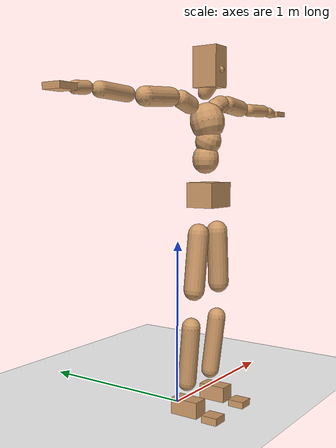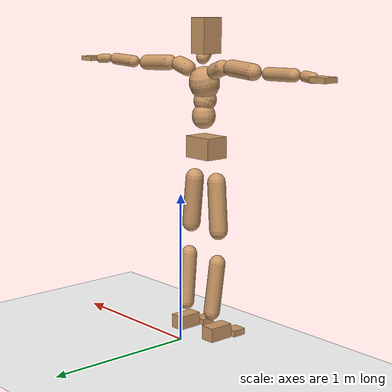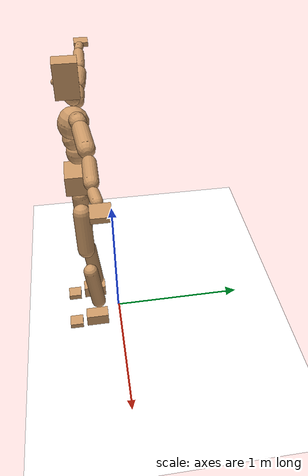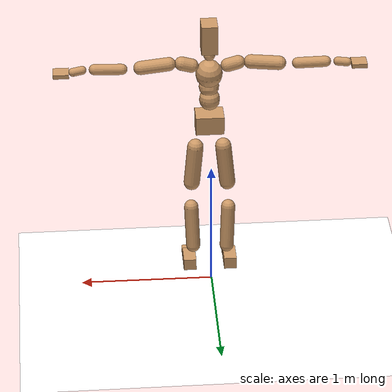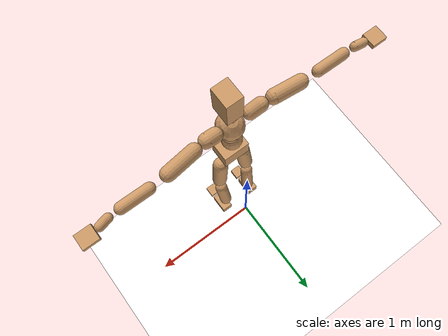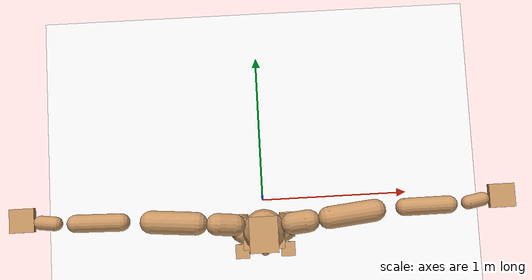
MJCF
<mujoco model="humanoid">
  <option integrator="implicitfast" />

  <visual>
    <global offwidth="1280" offheight="960" />
    <headlight active="1" ambient="0.34 0.34 0.34" diffuse="0.5 0.5 0.5" />
  </visual>

  <default>
    <joint damping="2" stiffness="2" armature="0.01" limited="true" solimplimit="0 .99 .01" />
    <geom condim="1" friction="0.7 0.005 0.0001" solimp=".99 .99 .003" solref="0.015 1" margin="0.001" rgba="0.8 0.6 .4 1" />
    <default class="smplcontact">
      <geom condim="3" friction="1. 0.005 0.0001" solref="0.015 1" solimp="0.98 0.98 0.001" priority="1" />
    </default>
    <default class="stiff_medium">
      <joint stiffness="10" />
    </default>
    <default class="stiff_medium_higher">
      <joint stiffness="50" />
    </default>
    <default class="stiff_high">
      <joint stiffness="100" />
    </default>
  </default>

  <asset>
    <texture type="skybox" builtin="gradient" rgb1="0.99 0.99 0.99" rgb2="0.608 0.828 0.892" width="100" />
    <texture builtin="flat" height="1278" mark="cross" markrgb="1 1 1" name="texgeom" random="0.01" rgb1="0.8 0.6 0.4" rgb2="0.8 0.6 0.4" type="cube" width="127" />
    <texture name="texplane" type="2d" builtin="checker" markrgb="1 1 1" rgb1="0.756 0.772 0.76" rgb2="0.6 0.6 0.6" width="100" height="100" />
    <material name="MatPlane" reflectance="0.5" texture="texplane" texrepeat="1 1" texuniform="true" />
    <material name="geom" texture="texgeom" texuniform="true" />
  </asset>

  <worldbody>
    <light name="tracking_light" pos="0 0 7" dir="0 0 -1" directional="true" cutoff="100" exponent="1" diffuse="1 1 1" specular="0.1 0.1 0.1" mode="trackcom" />
    <camera name="back" pos="0 3 2.4" xyaxes="-1 0 0 0 -1 2" mode="trackcom" />
    <camera name="side" pos="-3 0 2.4" xyaxes="0 -1 0 1 0 2" mode="trackcom" />
    <camera name="front_side" pos="-2.8 -2.8 0.8" xyaxes="0.5 -0.5 0 0.1 0.1 1" mode="trackcom" />
    <geom condim="3" name="floor" pos="0 0 0" rgba="1 1 1 1" size="100 100 .2" type="plane" material="MatPlane" />
    <body name="Pelvis" pos="-0.0018 -0.2233 1.30274" euler="90 0 0">
      <site name="Pelvis" size="0.01" />
      <freejoint name="Pelvis" />
      <geom type="box" pos="-0.0000 -0.0121 -0.0055" size="0.1069 0.0722 0.083" quat="1.0000 0.0000 0.0000 0.0000" density="3165.830099" name="Pelvis" />
      <body name="L_Hip" pos="0.0973 -0.12796 -0.00952">
        <joint name="L_Hip_x" type="hinge" pos="0 0 0" axis="1 0 0" stiffness="17.7472259" range="-160.0 22.92" class="stiff_medium" damping="30.81669086126342" armature="0.023782582284246248"/>
        <joint name="L_Hip_y" type="hinge" pos="0 0 0" axis="0 1 0" stiffness="17.633932700000003" range="-70.0 70.0" class="stiff_medium" damping="17.289750382357244" armature="0.016952285878023252"/>
        <joint name="L_Hip_z" type="hinge" pos="0 0 0" axis="0 0 1" stiffness="17.6422086" range="-28.65 90.0" class="stiff_medium" damping="20.487832382248058" armature="0.023792444882614765"/>
        <geom type="capsule" density="2040.816327" fromto="0.00966 -0.105 -0.00126 0.03836 -0.42028 -0.00504" size="0.0615" name="L_Hip" />
        <body name="L_Knee" pos="0.04802 -0.52528 -0.0063">
          <joint name="L_Knee_x" type="hinge" pos="0 0 0" axis="1 0 0" range="-5.16 171.89" damping="15.634387661988677" armature="0.022299756497886812" stiffness="3.42540284"/>
          <joint name="L_Knee_y" type="hinge" pos="0 0 0" axis="0 1 0" range="-4.58 6.88" damping="13.338012720872122" armature="0.015877769649549945" stiffness="3.50140848"/>
          <joint name="L_Knee_z" type="hinge" pos="0 0 0" axis="0 0 1" range="-6.88 4.58" damping="15.561040251102966" armature="0.022343640973993974" stiffness="3.3866735000000006"/>
          <geom type="capsule" density="1234.567901" fromto="-0.00378 -0.11144 -0.01218 -0.01526 -0.44576 -0.049" size="0.0541" name="L_Knee" />
          <body name="L_Ankle" pos="-0.01904 -0.5572 -0.06118">
            <joint name="L_Ankle_x" type="hinge" pos="0 0 0" axis="1 0 0" range="-45.84 45.84" class="stiff_medium" damping="9.067720254254931" armature="0.01631419654948911" stiffness="14.000000000000004"/>
            <joint name="L_Ankle_y" type="hinge" pos="0 0 0" axis="0 1 0" range="-74.48 22.92" class="stiff_medium" damping="4.501101099810406" armature="0.016079294532313052" stiffness="14.000000000000004"/>
            <joint name="L_Ankle_z" type="hinge" pos="0 0 0" axis="0 0 1" range="-4.58 4.58" class="stiff_medium" damping="8.560904771043779" armature="0.014541486210095258" stiffness="14.000000000000004"/>
            <geom type="box" pos="0.03262 -0.03346 0.03388" size="0.0483 0.0464 0.085" quat="1.0000 0.0000 0.0000 0.0000" density="449.071558" name="L_Ankle" class="smplcontact" />
            <body name="L_Toe" pos="0.03696 -0.07812 0.16702">
              <joint name="L_Toe_x" type="hinge" pos="0 0 0" axis="1 0 0" range="-91.67 22.92" armature="0.013649803949706305" damping="2.7647586172820824" stiffness="2.8000000000000007"/>
              <joint name="L_Toe_y" type="hinge" pos="0 0 0" axis="0 1 0" range="-4.58 4.58" armature="0.012571581533334169" damping="2.653315974147658" stiffness="2.8000000000000007"/>
              <joint name="L_Toe_z" type="hinge" pos="0 0 0" axis="0 0 1" range="-4.58 4.58" armature="0.010391473842481389" damping="2.4123070600132106" stiffness="2.8000000000000007"/>
              <geom type="box" pos="-0.0042 0.0077 0.03472" size="0.0478 0.02 0.0496" quat="1.0000 0.0000 0.0000 0.0000" density="423.206892" name="L_Toe" class="smplcontact" />
            </body>
          </body>
        </body>
      </body>
      <body name="R_Hip" pos="-0.09478 -0.1267 -0.00602">
        <joint name="R_Hip_x" type="hinge" pos="0 0 0" axis="1 0 0" stiffness="17.7472259" range="-160.0 22.92" class="stiff_medium" damping="30.81669086126342" armature="0.023782582284246248"/>
        <joint name="R_Hip_y" type="hinge" pos="0 0 0" axis="0 1 0" stiffness="17.633932700000003" range="-70.0 70.0" class="stiff_medium" damping="17.289750382357244" armature="0.016952285878023252"/>
        <joint name="R_Hip_z" type="hinge" pos="0 0 0" axis="0 0 1" stiffness="17.6422086" range="-90.0 28.65" class="stiff_medium" damping="20.487832382248058" armature="0.023792444882614765"/>
        <geom type="capsule" density="2040.816327" fromto="-0.01078 -0.1071 -0.00252 -0.04284 -0.42854 -0.00994" size="0.0606" name="R_Hip" />
        <body name="R_Knee" pos="-0.05362 -0.53564 -0.01246">
          <joint name="R_Knee_x" type="hinge" pos="0 0 0" axis="1 0 0" range="-5.16 171.89" damping="15.634387661988677" armature="0.022299756497886812" stiffness="3.42540284"/>
          <joint name="R_Knee_y" type="hinge" pos="0 0 0" axis="0 1 0" range="-6.88 4.58" damping="13.338012720872122" armature="0.015877769649549945" stiffness="3.50140848"/>
          <joint name="R_Knee_z" type="hinge" pos="0 0 0" axis="0 0 1" range="-4.58 6.88" damping="15.561040251102966" armature="0.022343640973993974" stiffness="3.3866735000000006"/>
          <geom type="capsule" density="1234.567901" fromto="0.00448 -0.11158 -0.0119 0.01764 -0.44618 -0.04732" size="0.0541" name="R_Knee" />
          <body name="R_Ankle" pos="0.02212 -0.55776 -0.05922">
            <joint name="R_Ankle_x" type="hinge" pos="0 0 0" axis="1 0 0" range="-45.84 45.84" class="stiff_medium" damping="9.067720254254931" armature="0.01631419654948911" stiffness="14.000000000000004"/>
            <joint name="R_Ankle_y" type="hinge" pos="0 0 0" axis="0 1 0" range="-22.92 74.48" class="stiff_medium" damping="4.501101099810406" armature="0.016079294532313052" stiffness="14.000000000000004"/>
            <joint name="R_Ankle_z" type="hinge" pos="0 0 0" axis="0 0 1" range="-4.58 4.58" class="stiff_medium" damping="8.560904771043779" armature="0.014541486210095258" stiffness="14.000000000000004"/>
            <geom type="box" pos="-0.02968 -0.02436 0.03584" size="0.0483 0.0478 0.0865" quat="1.0000 0.0000 0.0000 0.0000" density="434.700981" name="R_Ankle" class="smplcontact" />
            <body name="R_Toe" pos="-0.03556 -0.06734 0.17262">
              <joint name="R_Toe_x" type="hinge" pos="0 0 0" axis="1 0 0" range="-91.67 22.92" armature="0.013649803949706305" damping="2.7647586172820824" stiffness="2.8000000000000007"/>
              <joint name="R_Toe_y" type="hinge" pos="0 0 0" axis="0 1 0" range="-4.58 4.58" armature="0.012571581533334169" damping="2.653315974147658" stiffness="2.8000000000000007"/>
              <joint name="R_Toe_z" type="hinge" pos="0 0 0" axis="0 0 1" range="-4.58 4.58" armature="0.010391473842481389" damping="2.4123070600132106" stiffness="2.8000000000000007"/>
              <geom type="box" pos="0.00588 0.0063 0.03178" size="0.0479 0.0216 0.0493" quat="1.0000 0.0000 0.0000 0.0000" density="407.384095" name="R_Toe" class="smplcontact" />
            </body>
          </body>
        </body>
      </body>
      <body name="Torso" pos="-0.00275 0.1199 -0.02937">
        <joint name="Torso_x" type="hinge" pos="0 0 0" axis="1 0 0" range="-25.78 57.3" class="stiff_medium" damping="19.180403402400707" armature="0.013576805350455617" stiffness="12.0430188"/>
        <joint name="Torso_y" type="hinge" pos="0 0 0" axis="0 1 0" range="-57.3 57.3" class="stiff_high" damping="31.976250733041294" armature="0.02135014531378717" stiffness="119.72759387755103"/>
        <joint name="Torso_z" type="hinge" pos="0 0 0" axis="0 0 1" range="-34.38 34.38" class="stiff_high" damping="27.52220533167257" armature="0.016259427694042636" stiffness="116.4665510638298"/>
        <geom type="capsule" density="2040.816327" fromto="0.00275 0.06688 0.00055 0.0033 0.08173 0.00066" size="0.0769" name="Torso" />
        <body name="Spine" pos="0.00605 0.14872 0.00121">
          <joint name="Spine_x" type="hinge" pos="0 0 0" axis="1 0 0" stiffness="12.183106200000001" range="-25.78 57.3" class="stiff_medium" damping="19.341452409705997" armature="0.013647013429024524"/>
          <joint name="Spine_y" type="hinge" pos="0 0 0" axis="0 1 0" stiffness="12.461571276595745" range="-57.3 57.3" class="stiff_high" damping="13.072377803165951" armature="0.021426754905605697"/>
          <joint name="Spine_z" type="hinge" pos="0 0 0" axis="0 0 1" stiffness="25.257026800000002" range="-34.38 34.38" class="stiff_high" damping="18.089865150196843" armature="0.01799516932145979"/>
          <geom type="capsule" density="2040.816327" fromto="0.00077 0.02618 0.01254 0.00088 0.03201 0.0154" size="0.0755" name="Spine" />
          <body name="Chest" pos="0.00165 0.05819 0.02794">
            <joint name="Chest_x" type="hinge" pos="0 0 0" axis="1 0 0" stiffness="12.662946041666665" range="-25.78 57.3" class="stiff_medium" damping="19.75792096959218" armature="0.013701408459546052"/>
            <joint name="Chest_y" type="hinge" pos="0 0 0" axis="0 1 0" stiffness="14.396006222222223" range="-57.3 57.3" class="stiff_high" damping="14.060475364183041" armature="0.021457444995407138"/>
            <joint name="Chest_z" type="hinge" pos="0 0 0" axis="0 0 1" stiffness="25.199354166666662" range="-34.38 34.38" class="stiff_high" damping="18.45923579641987" armature="0.018780429843899146"/>
            <geom type="capsule" density="2040.816327" fromto="-0.00099 0.07502 -0.01903 -0.0011 0.09163 -0.02332" size="0.1002" name="Chest" />
            <body name="Neck" pos="-0.00308 0.23529 -0.04719">
              <joint name="Neck_x" type="hinge" pos="0 0 0" axis="1 0 0" range="-28.65 57.3" class="stiff_medium_higher" damping="10.069569142297464" armature="0.01002927239344577" stiffness="50.550138999999994"/>
              <joint name="Neck_y" type="hinge" pos="0 0 0" axis="0 1 0" range="-40.11 40.11" class="stiff_medium_higher" damping="10.084930437205912" armature="0.010080252445350293" stiffness="50.448052999999994"/>
              <joint name="Neck_z" type="hinge" pos="0 0 0" axis="0 0 1" range="-40.11 40.11" class="stiff_medium_higher" damping="10.034432176186607" armature="0.010020465619005494" stiffness="50.242091"/>
              <geom type="capsule" density="1000" fromto="0.0011 0.0143 0.01133 0.00451 0.0572 0.04521" size="0.0436" name="Neck" />
              <body name="Head" pos="0.0052 0.065 0.0513">
                <joint name="Head_x" type="hinge" pos="0 0 0" axis="1 0 0" range="-28.65 57.3" class="stiff_medium_higher" damping="2.0000000000000107" armature="0.01000000000000011" stiffness="50.0"/>
                <joint name="Head_y" type="hinge" pos="0 0 0" axis="0 1 0" range="-40.11 40.11" class="stiff_medium_higher" damping="2.0" armature="0.010000000000000002" stiffness="50.0"/>
                <joint name="Head_z" type="hinge" pos="0 0 0" axis="0 0 1" range="-40.11 40.11" class="stiff_medium_higher" damping="2.000000000000003" armature="0.010000000000000031" stiffness="50.0"/>
                <geom type="box" pos="-0.0042 0.0876 -0.0116" size="0.0606 0.1154 0.076" quat="1.0000 0.0000 0.0000 0.0000" density="1018.069894" name="Head" />
                <geom type="capsule" name="nose" size="0.02 0.01" pos="0 0.07 0.05" quat="1 0 0 0" mass="0" contype="0" conaffinity="0" />
              </body>
            </body>
            <body name="L_Thorax" pos="0.10638 0.164295 -0.046035">
              <joint name="L_Thorax_x" type="hinge" pos="0 0 0" axis="1 0 0" range="-10.89 4.58" class="stiff_medium_higher" damping="33.86834694143629" armature="0.017502368248355275" stiffness="81.92212250000001"/>
              <joint name="L_Thorax_y" type="hinge" pos="0 0 0" axis="0 1 0" range="-28.65 17.19" class="stiff_medium_higher" damping="37.86168396029217" armature="0.021719277282597226" stiffness="82.50200349999999"/>
              <joint name="L_Thorax_z" type="hinge" pos="0 0 0" axis="0 0 1" range="-31.51 40.11" class="stiff_medium_higher" damping="37.86396578647671" armature="0.021723155467023466" stiffness="82.49721749999999"/>
              <geom type="capsule" density="1000" fromto="0.02457 0.008235 -0.00243 0.09828 0.03294 -0.009585" size="0.0521" name="L_Thorax" />
              <body name="L_Shoulder" pos="0.12285 0.041175 -0.012015">
                <joint name="L_Shoulder_x" type="hinge" pos="0 0 0" axis="1 0 0" range="-97.4 97.4" class="stiff_medium" damping="9.61387397337615" armature="0.0157519024376585" stiffness="16.2990141"/>
                <joint name="L_Shoulder_y" type="hinge" pos="0 0 0" axis="0 1 0" range="-108.86 80.21" class="stiff_medium" damping="11.29382657476658" armature="0.0215269623093664" stiffness="16.4587549"/>
                <joint name="L_Shoulder_z" type="hinge" pos="0 0 0" axis="0 0 1" range="-97.4 85.94" class="stiff_medium" damping="11.290924742711962" armature="0.021531581990189758" stiffness="16.4467687"/>
                <geom type="capsule" density="1000" fromto="0.070065 -0.00351 -0.007425 0.280395 -0.01377 -0.0297" size="0.0517" name="L_Shoulder" />
                <body name="L_Elbow" pos="0.35046 -0.01728 -0.037125">
                  <joint name="L_Elbow_x" type="hinge" pos="0 0 0" axis="1 0 0" range="-17.19 4.58" damping="7.236903913304343" armature="0.013132590610779751" stiffness="3.1904004200000005"/>
                  <joint name="L_Elbow_y" type="hinge" pos="0 0 0" axis="0 1 0" range="-180.0 17.19" damping="9.06533387064848" armature="0.020597856187579956" stiffness="3.1917992799999997"/>
                  <joint name="L_Elbow_z" type="hinge" pos="0 0 0" axis="0 0 1" range="-100.84 4.58" damping="9.066525771627628" armature="0.02062202708815046" stiffness="3.18889658"/>
                  <geom type="capsule" density="1000" fromto="0.06723 0.00243 -0.00027 0.26919 0.00972 -0.001215" size="0.0405" name="L_Elbow" />
                  <body name="L_Wrist" pos="0.33642 0.01215 -0.00162">
                    <joint name="L_Wrist_x" type="hinge" pos="0 0 0" axis="1 0 0" range="-180.0 22.92" armature="0.012722048376235496" damping="2.7028564674241524" stiffness="2.87117014"/>
                    <joint name="L_Wrist_y" type="hinge" pos="0 0 0" axis="0 1 0" range="-17.19 17.19" armature="0.017810136371011583" damping="3.211701841472584" stiffness="2.89583092"/>
                    <joint name="L_Wrist_z" type="hinge" pos="0 0 0" axis="0 0 1" range="-22.92 22.92" armature="0.01808569310151596" damping="3.2309545890101448" stiffness="2.8860015199999998"/>
                    <geom type="capsule" density="1000" fromto="0.02268 -0.00216 -0.00405 0.09072 -0.008775 -0.0162" size="0.0318" name="L_Wrist" class="smplcontact" />
                    <body name="L_Hand" pos="0.1134 -0.01107 -0.020115">
                      <joint name="L_Hand_x" type="hinge" pos="0 0 0" axis="1 0 0" range="-17.19 17.19" armature="0.010358331670280871" damping="2.3650579489627033" stiffness="2.6999999999999993"/>
                      <joint name="L_Hand_y" type="hinge" pos="0 0 0" axis="0 1 0" range="-51.57 51.57" armature="0.014333527180403429" damping="2.7821043613455356" stiffness="2.6999999999999993"/>
                      <joint name="L_Hand_z" type="hinge" pos="0 0 0" axis="0 0 1" range="-91.67 91.67" armature="0.01539316985704577" damping="2.8831079970761957" stiffness="2.6999999999999993"/>
                      <geom type="box" pos="0.066555 0.00135 -0.00783" size="0.0585 0.0158 0.0538" quat="1.0000 0.0000 0.0000 0.0000" density="400.552564" name="L_Hand" class="smplcontact" />
                    </body>
                  </body>
                </body>
              </body>
            </body>
            <body name="R_Thorax" pos="-0.11043 0.16038 -0.05211">
              <joint name="R_Thorax_x" type="hinge" pos="0 0 0" axis="1 0 0" range="-10.89 4.58" class="stiff_medium_higher" damping="33.86834694143629" armature="0.017502368248355275" stiffness="81.92212250000001"/>
              <joint name="R_Thorax_y" type="hinge" pos="0 0 0" axis="0 1 0" range="-17.19 28.65" class="stiff_medium_higher" damping="37.86168396029217" armature="0.021719277282597226" stiffness="82.50200349999999"/>
              <joint name="R_Thorax_z" type="hinge" pos="0 0 0" axis="0 0 1" range="-40.11 31.51" class="stiff_medium_higher" damping="37.86396578647671" armature="0.021723155467023466" stiffness="82.49721749999999"/>
              <geom type="capsule" density="1000" fromto="-0.02592 0.008775 -0.00243 -0.10368 0.0351 -0.009855" size="0.0511" name="R_Thorax" />
              <body name="R_Shoulder" pos="-0.1296 0.04401 -0.012285">
                <joint name="R_Shoulder_x" type="hinge" pos="0 0 0" axis="1 0 0" range="-97.4 97.4" class="stiff_medium" damping="9.61387397337615" armature="0.0157519024376585" stiffness="16.2990141"/>
                <joint name="R_Shoulder_y" type="hinge" pos="0 0 0" axis="0 1 0" range="-80.21 108.86" class="stiff_medium" damping="11.29382657476658" armature="0.0215269623093664" stiffness="16.4587549"/>
                <joint name="R_Shoulder_z" type="hinge" pos="0 0 0" axis="0 0 1" range="-85.94 97.4" class="stiff_medium" damping="11.290924742711962" armature="0.021531581990189758" stiffness="16.4467687"/>
                <geom type="capsule" density="1000" fromto="-0.068445 -0.003645 -0.005805 -0.27405 -0.014445 -0.023085" size="0.0531" name="R_Shoulder" />
                <body name="R_Elbow" pos="-0.342495 -0.017955 -0.02889">
                  <joint name="R_Elbow_x" type="hinge" pos="0 0 0" axis="1 0 0" range="-17.19 4.58" damping="7.236903913304343" armature="0.013132590610779751" stiffness="3.1904004200000005"/>
                  <joint name="R_Elbow_y" type="hinge" pos="0 0 0" axis="0 1 0" range="-17.19 180.0" damping="9.06533387064848" armature="0.020597856187579956" stiffness="3.1917992799999997"/>
                  <joint name="R_Elbow_z" type="hinge" pos="0 0 0" axis="0 0 1" range="-4.58 100.84" damping="9.066525771627628" armature="0.02062202708815046" stiffness="3.18889658"/>
                  <geom type="capsule" density="1000" fromto="-0.068985 0.00216 -0.001485 -0.27567 0.00837 -0.00594" size="0.0408" name="R_Elbow" />
                  <body name="R_Wrist" pos="-0.344655 0.01053 -0.00756">
                    <joint name="R_Wrist_x" type="hinge" pos="0 0 0" axis="1 0 0" range="-180.0 22.92" armature="0.012722048376235496" damping="2.7028564674241524" stiffness="2.87117014"/>
                    <joint name="R_Wrist_y" type="hinge" pos="0 0 0" axis="0 1 0" range="-17.19 17.19" armature="0.017810136371011583" damping="3.211701841472584" stiffness="2.89583092"/>
                    <joint name="R_Wrist_z" type="hinge" pos="0 0 0" axis="0 0 1" range="-22.92 22.92" armature="0.01808569310151596" damping="3.2309545890101448" stiffness="2.8860015199999998"/>
                    <geom type="capsule" density="1000" fromto="-0.022815 -0.00162 -0.002835 -0.091395 -0.006615 -0.011205" size="0.0326" name="R_Wrist" class="smplcontact" />
                    <body name="R_Hand" pos="-0.11421 -0.008235 -0.013905">
                      <joint name="R_Hand_x" type="hinge" pos="0 0 0" axis="1 0 0" range="-17.19 17.19" armature="0.010358331670280871" damping="2.3650579489627033" stiffness="2.6999999999999993"/>
                      <joint name="R_Hand_y" type="hinge" pos="0 0 0" axis="0 1 0" range="-51.57 51.57" armature="0.014333527180403429" damping="2.7821043613455356" stiffness="2.6999999999999993"/>
                      <joint name="R_Hand_z" type="hinge" pos="0 0 0" axis="0 0 1" range="-91.67 91.67" armature="0.01539316985704577" damping="2.8831079970761957" stiffness="2.6999999999999993"/>
                      <geom type="box" pos="-0.06237 -0.001215 -0.010665" size="0.0569 0.0164 0.0546" quat="1.0000 0.0000 0.0000 0.0000" density="403.679611" name="R_Hand" class="smplcontact" />
                    </body>
                  </body>
                </body>
              </body>
            </body>
          </body>
        </body>
      </body>
    </body>
  </worldbody>
  <actuator>
    <general name="L_Hip_x" joint="L_Hip_x" biastype="affine" gainprm="509.9311555396662" biasprm="-382.1417166049499 -319.45006620000004 -4.108892114835123" ctrllimited="true" ctrlrange="-1 1" forcerange="-638.9001324000001 638.9001324000001" />
    <general name="L_Hip_y" joint="L_Hip_y" biastype="affine" gainprm="387.7904339695178" biasprm="0.0 -317.41078860000005 -3.4579500764714486" ctrllimited="true" ctrlrange="-1 1" forcerange="-634.8215772000001 634.8215772000001" />
    <general name="L_Hip_z" joint="L_Hip_z" biastype="affine" gainprm="328.8066348623191" biasprm="170.01506151540895 -317.5597548 -4.097566476449612" ctrllimited="true" ctrlrange="-1 1" forcerange="-635.1195096 635.1195096" />
    <general name="L_Knee_x" joint="L_Knee_x" biastype="affine" gainprm="476.31851785450704" biasprm="448.5545692283646 -308.2862556 -3.9085969154971694" ctrllimited="true" ctrlrange="-1 1" forcerange="-616.5725112 616.5725112" />
    <general name="L_Knee_y" joint="L_Knee_y" biastype="affine" gainprm="31.514997587627033" biasprm="6.324999515841377 -315.12676319999997 -3.3345031802180305" ctrllimited="true" ctrlrange="-1 1" forcerange="-630.2535263999999 630.2535263999999" />
    <general name="L_Knee_z" joint="L_Knee_z" biastype="affine" gainprm="30.482306703781223" biasprm="-6.117740437931659 -304.80061500000005 -3.8902600627757415" ctrllimited="true" ctrlrange="-1 1" forcerange="-609.6012300000001 609.6012300000001" />
    <general name="L_Ankle_x" joint="L_Ankle_x" biastype="affine" gainprm="100.80742506838932" biasprm="0.0 -126.00000000000003 -3.0225734180849773" ctrllimited="true" ctrlrange="-1 1" forcerange="-252.00000000000006 252.00000000000006" />
    <general name="L_Ankle_y" joint="L_Ankle_y" biastype="affine" gainprm="107.0968935608761" biasprm="-56.69318102668143 -126.00000000000003 -3.000734066540271" ctrllimited="true" ctrlrange="-1 1" forcerange="-252.00000000000006 252.00000000000006" />
    <general name="L_Ankle_z" joint="L_Ankle_z" biastype="affine" gainprm="10.071946047408879" biasprm="0.0 -126.00000000000003 -2.8536349236812595" ctrllimited="true" ctrlrange="-1 1" forcerange="-252.00000000000006 252.00000000000006" />
    <general name="L_Toe_x" joint="L_Toe_x" biastype="affine" gainprm="100.79862860895925" biasprm="-60.475658581603525 -100.80000000000003 -1.105903446912833" ctrllimited="true" ctrlrange="-1 1" forcerange="-201.60000000000005 201.60000000000005" />
    <general name="L_Toe_y" joint="L_Toe_y" biastype="affine" gainprm="8.057556837927104" biasprm="0.0 -100.80000000000003 -1.0613263896590632" ctrllimited="true" ctrlrange="-1 1" forcerange="-201.60000000000005 201.60000000000005" />
    <general name="L_Toe_z" joint="L_Toe_z" biastype="affine" gainprm="8.057556837927104" biasprm="0.0 -100.80000000000003 -0.9649228240052843" ctrllimited="true" ctrlrange="-1 1" forcerange="-201.60000000000005 201.60000000000005" />
    <general name="R_Hip_x" joint="R_Hip_x" biastype="affine" gainprm="509.9311555396662" biasprm="-382.1417166049499 -319.45006620000004 -4.108892114835123" ctrllimited="true" ctrlrange="-1 1" forcerange="-638.9001324000001 638.9001324000001" />
    <general name="R_Hip_y" joint="R_Hip_y" biastype="affine" gainprm="387.7904339695178" biasprm="0.0 -317.41078860000005 -3.4579500764714486" ctrllimited="true" ctrlrange="-1 1" forcerange="-634.8215772000001 634.8215772000001" />
    <general name="R_Hip_z" joint="R_Hip_z" biastype="affine" gainprm="328.8066348623191" biasprm="-170.01506151540895 -317.5597548 -4.097566476449612" ctrllimited="true" ctrlrange="-1 1" forcerange="-635.1195096 635.1195096" />
    <general name="R_Knee_x" joint="R_Knee_x" biastype="affine" gainprm="476.31851785450704" biasprm="448.5545692283646 -308.2862556 -3.9085969154971694" ctrllimited="true" ctrlrange="-1 1" forcerange="-616.5725112 616.5725112" />
    <general name="R_Knee_y" joint="R_Knee_y" biastype="affine" gainprm="31.514997587627033" biasprm="-6.324999515841377 -315.12676319999997 -3.3345031802180305" ctrllimited="true" ctrlrange="-1 1" forcerange="-630.2535263999999 630.2535263999999" />
    <general name="R_Knee_z" joint="R_Knee_z" biastype="affine" gainprm="30.482306703781223" biasprm="6.117740437931659 -304.80061500000005 -3.8902600627757415" ctrllimited="true" ctrlrange="-1 1" forcerange="-609.6012300000001 609.6012300000001" />
    <general name="R_Ankle_x" joint="R_Ankle_x" biastype="affine" gainprm="100.80742506838932" biasprm="0.0 -126.00000000000003 -3.0225734180849773" ctrllimited="true" ctrlrange="-1 1" forcerange="-252.00000000000006 252.00000000000006" />
    <general name="R_Ankle_y" joint="R_Ankle_y" biastype="affine" gainprm="107.0968935608761" biasprm="56.69318102668143 -126.00000000000003 -3.000734066540271" ctrllimited="true" ctrlrange="-1 1" forcerange="-252.00000000000006 252.00000000000006" />
    <general name="R_Ankle_z" joint="R_Ankle_z" biastype="affine" gainprm="10.071946047408879" biasprm="0.0 -126.00000000000003 -2.8536349236812595" ctrllimited="true" ctrlrange="-1 1" forcerange="-252.00000000000006 252.00000000000006" />
    <general name="R_Toe_x" joint="R_Toe_x" biastype="affine" gainprm="100.79862860895925" biasprm="-60.475658581603525 -100.80000000000003 -1.105903446912833" ctrllimited="true" ctrlrange="-1 1" forcerange="-201.60000000000005 201.60000000000005" />
    <general name="R_Toe_y" joint="R_Toe_y" biastype="affine" gainprm="8.057556837927104" biasprm="0.0 -100.80000000000003 -1.0613263896590632" ctrllimited="true" ctrlrange="-1 1" forcerange="-201.60000000000005 201.60000000000005" />
    <general name="R_Toe_z" joint="R_Toe_z" biastype="affine" gainprm="8.057556837927104" biasprm="0.0 -100.80000000000003 -0.9649228240052843" ctrllimited="true" ctrlrange="-1 1" forcerange="-201.60000000000005 201.60000000000005" />
    <general name="Torso_x" joint="Torso_x" biastype="affine" gainprm="209.55135133656017" biasprm="79.50239039634539 -289.0324512 -5.114774240640188" ctrllimited="true" ctrlrange="-1 1" forcerange="-433.5486768 433.5486768" />
    <general name="Torso_y" joint="Torso_y" biastype="affine" gainprm="287.3673916292802" biasprm="0.0 -287.34622530612245 -6.395250146608259" ctrllimited="true" ctrlrange="-1 1" forcerange="-431.0193379591837 431.0193379591837" />
    <general name="Torso_z" joint="Torso_z" biastype="affine" gainprm="167.72418741915368" biasprm="0.0 -279.5197225531915 -5.504441066334514" ctrllimited="true" ctrlrange="-1 1" forcerange="-419.27958382978727 419.27958382978727" />
    <general name="Spine_x" joint="Spine_x" biastype="affine" gainprm="211.98890494855198" biasprm="80.42718204114536 -292.3945488 -5.157720642588266" ctrllimited="true" ctrlrange="-1 1" forcerange="-438.5918232 438.5918232" />
    <general name="Spine_y" joint="Spine_y" biastype="affine" gainprm="299.0997411190042" biasprm="0.0 -299.07771063829784 -6.5361889015829755" ctrllimited="true" ctrlrange="-1 1" forcerange="-448.61656595744677 448.61656595744677" />
    <general name="Spine_z" joint="Spine_z" biastype="affine" gainprm="181.86398832795004" biasprm="0.0 -303.0843216 -6.029955050065615" ctrllimited="true" ctrlrange="-1 1" forcerange="-454.62648240000004 454.62648240000004" />
    <general name="Chest_x" joint="Chest_x" biastype="affine" gainprm="220.3382307211208" biasprm="83.59486076468134 -303.91070499999995 -5.268778925224582" ctrllimited="true" ctrlrange="-1 1" forcerange="-455.86605749999995 455.86605749999995" />
    <general name="Chest_y" joint="Chest_y" biastype="affine" gainprm="345.52959965017436" biasprm="0.0 -345.5041493333333 -7.030237682091521" ctrllimited="true" ctrlrange="-1 1" forcerange="-518.256224 518.256224" />
    <general name="Chest_z" joint="Chest_z" biastype="affine" gainprm="181.44871478057524" biasprm="0.0 -302.39224999999993 -6.153078598806623" ctrllimited="true" ctrlrange="-1 1" forcerange="-453.5883749999999 453.5883749999999" />
    <general name="Neck_x" joint="Neck_x" biastype="affine" gainprm="27.29908580056694" biasprm="9.099695266855646 -36.39610008 -0.805565531383797" ctrllimited="true" ctrlrange="-1 1" forcerange="-72.79220016 72.79220016" />
    <general name="Neck_y" joint="Neck_y" biastype="affine" gainprm="25.42769161321815" biasprm="0.0 -36.32259816 -0.8067944349764731" ctrllimited="true" ctrlrange="-1 1" forcerange="-72.64519632 72.64519632" />
    <general name="Neck_z" joint="Neck_z" biastype="affine" gainprm="25.323879118808478" biasprm="0.0 -36.17430552 -0.8027545740949287" ctrllimited="true" ctrlrange="-1 1" forcerange="-72.34861104 72.34861104" />
    <general name="Head_x" joint="Head_x" biastype="affine" gainprm="18.001325905069514" biasprm="6.000441968356505 -24.0 -0.8000000000000043" ctrllimited="true" ctrlrange="-1 1" forcerange="-48.0 48.0" />
    <general name="Head_y" joint="Head_y" biastype="affine" gainprm="16.801237511398213" biasprm="0.0 -24.0 -0.8" ctrllimited="true" ctrlrange="-1 1" forcerange="-48.0 48.0" />
    <general name="Head_z" joint="Head_z" biastype="affine" gainprm="16.801237511398213" biasprm="0.0 -24.0 -0.8000000000000013" ctrllimited="true" ctrlrange="-1 1" forcerange="-48.0 48.0" />
    <general name="L_Thorax_x" joint="L_Thorax_x" biastype="affine" gainprm="26.543007094314092" biasprm="-10.82652713413846 -196.61309400000005 -2.709467755314904" ctrllimited="true" ctrlrange="-1 1" forcerange="-393.2261880000001 393.2261880000001" />
    <general name="L_Thorax_y" joint="L_Thorax_y" biastype="affine" gainprm="79.20775748398323" biasprm="-19.801939370995807 -198.00480839999997 -3.0289347168233736" ctrllimited="true" ctrlrange="-1 1" forcerange="-396.00961679999995 396.00961679999995" />
    <general name="L_Thorax_z" joint="L_Thorax_z" biastype="affine" gainprm="123.746302451494" biasprm="14.85923207320369 -197.99332199999998 -3.029117262918137" ctrllimited="true" ctrlrange="-1 1" forcerange="-395.98664399999996 395.98664399999996" />
    <general name="L_Shoulder_x" joint="L_Shoulder_x" biastype="affine" gainprm="132.99609738780327" biasprm="0.0 -78.23526767999999 -2.56369972623364" ctrllimited="true" ctrlrange="-1 1" forcerange="-156.47053535999999 156.47053535999999" />
    <general name="L_Shoulder_y" joint="L_Shoulder_y" biastype="affine" gainprm="130.3491523622247" biasprm="-19.75196072977065 -79.00202352 -3.0116870866044216" ctrllimited="true" ctrlrange="-1 1" forcerange="-158.00404704 158.00404704" />
    <general name="L_Shoulder_z" joint="L_Shoulder_z" biastype="affine" gainprm="126.30670946097895" biasprm="-7.895030492106589 -78.94448976 -3.01091326472319" ctrllimited="true" ctrlrange="-1 1" forcerange="-157.88897952 157.88897952" />
    <general name="L_Elbow_x" joint="L_Elbow_x" biastype="affine" gainprm="21.819937161265862" biasprm="-12.638925475588545 -114.85441512000001 -1.157904626128695" ctrllimited="true" ctrlrange="-1 1" forcerange="-229.70883024000003 229.70883024000003" />
    <general name="L_Elbow_y" joint="L_Elbow_y" biastype="affine" gainprm="197.72898277491527" biasprm="-163.25501133720758 -114.90477407999998 -1.450453419303757" ctrllimited="true" ctrlrange="-1 1" forcerange="-229.80954815999996 229.80954815999996" />
    <general name="L_Elbow_z" joint="L_Elbow_z" biastype="affine" gainprm="105.61201271313796" biasprm="-96.43532862613036 -114.80027688000001 -1.4506441234604206" ctrllimited="true" ctrlrange="-1 1" forcerange="-229.60055376000003 229.60055376000003" />
    <general name="L_Wrist_x" joint="L_Wrist_x" biastype="affine" gainprm="30.505799018360737" biasprm="-23.614483095821527 -17.227020839999998 -1.081142586969661" ctrllimited="true" ctrlrange="-1 1" forcerange="-34.454041679999996 34.454041679999996" />
    <general name="L_Wrist_y" joint="L_Wrist_y" biastype="affine" gainprm="5.2128796156897295" biasprm="0.0 -17.37498552 -1.2846807365890338" ctrllimited="true" ctrlrange="-1 1" forcerange="-34.74997104 34.74997104" />
    <general name="L_Wrist_z" joint="L_Wrist_z" biastype="affine" gainprm="6.926913856539467" biasprm="0.0 -17.316009119999997 -1.292381835604058" ctrllimited="true" ctrlrange="-1 1" forcerange="-34.632018239999994 34.632018239999994" />
    <general name="L_Hand_x" joint="L_Hand_x" biastype="affine" gainprm="4.860357994368769" biasprm="0.0 -16.199999999999996 -0.9460231795850813" ctrllimited="true" ctrlrange="-1 1" forcerange="-32.39999999999999 32.39999999999999" />
    <general name="L_Hand_y" joint="L_Hand_y" biastype="affine" gainprm="14.581073983106302" biasprm="0.0 -16.199999999999996 -1.1128417445382144" ctrllimited="true" ctrlrange="-1 1" forcerange="-32.39999999999999 32.39999999999999" />
    <general name="L_Hand_z" joint="L_Hand_z" biastype="affine" gainprm="25.919081869911864" biasprm="0.0 -16.199999999999996 -1.1532431988304783" ctrllimited="true" ctrlrange="-1 1" forcerange="-32.39999999999999 32.39999999999999" />
    <general name="R_Thorax_x" joint="R_Thorax_x" biastype="affine" gainprm="26.543007094314092" biasprm="-10.82652713413846 -196.61309400000005 -2.709467755314904" ctrllimited="true" ctrlrange="-1 1" forcerange="-393.2261880000001 393.2261880000001" />
    <general name="R_Thorax_y" joint="R_Thorax_y" biastype="affine" gainprm="79.20775748398323" biasprm="19.801939370995793 -198.00480839999997 -3.0289347168233736" ctrllimited="true" ctrlrange="-1 1" forcerange="-396.00961679999995 396.00961679999995" />
    <general name="R_Thorax_z" joint="R_Thorax_z" biastype="affine" gainprm="123.746302451494" biasprm="-14.85923207320369 -197.99332199999998 -3.029117262918137" ctrllimited="true" ctrlrange="-1 1" forcerange="-395.98664399999996 395.98664399999996" />
    <general name="R_Shoulder_x" joint="R_Shoulder_x" biastype="affine" gainprm="132.99609738780327" biasprm="0.0 -78.23526767999999 -2.56369972623364" ctrllimited="true" ctrlrange="-1 1" forcerange="-156.47053535999999 156.47053535999999" />
    <general name="R_Shoulder_y" joint="R_Shoulder_y" biastype="affine" gainprm="130.3491523622247" biasprm="19.75196072977065 -79.00202352 -3.0116870866044216" ctrllimited="true" ctrlrange="-1 1" forcerange="-158.00404704 158.00404704" />
    <general name="R_Shoulder_z" joint="R_Shoulder_z" biastype="affine" gainprm="126.30670946097895" biasprm="7.895030492106572 -78.94448976 -3.01091326472319" ctrllimited="true" ctrlrange="-1 1" forcerange="-157.88897952 157.88897952" />
    <general name="R_Elbow_x" joint="R_Elbow_x" biastype="affine" gainprm="21.819937161265862" biasprm="-12.638925475588545 -114.85441512000001 -1.157904626128695" ctrllimited="true" ctrlrange="-1 1" forcerange="-229.70883024000003 229.70883024000003" />
    <general name="R_Elbow_y" joint="R_Elbow_y" biastype="affine" gainprm="197.72898277491527" biasprm="163.25501133720758 -114.90477407999998 -1.450453419303757" ctrllimited="true" ctrlrange="-1 1" forcerange="-229.80954815999996 229.80954815999996" />
    <general name="R_Elbow_z" joint="R_Elbow_z" biastype="affine" gainprm="105.61201271313796" biasprm="96.43532862613034 -114.80027688000001 -1.4506441234604206" ctrllimited="true" ctrlrange="-1 1" forcerange="-229.60055376000003 229.60055376000003" />
    <general name="R_Wrist_x" joint="R_Wrist_x" biastype="affine" gainprm="30.505799018360737" biasprm="-23.614483095821527 -17.227020839999998 -1.081142586969661" ctrllimited="true" ctrlrange="-1 1" forcerange="-34.454041679999996 34.454041679999996" />
    <general name="R_Wrist_y" joint="R_Wrist_y" biastype="affine" gainprm="5.2128796156897295" biasprm="0.0 -17.37498552 -1.2846807365890338" ctrllimited="true" ctrlrange="-1 1" forcerange="-34.74997104 34.74997104" />
    <general name="R_Wrist_z" joint="R_Wrist_z" biastype="affine" gainprm="6.926913856539467" biasprm="0.0 -17.316009119999997 -1.292381835604058" ctrllimited="true" ctrlrange="-1 1" forcerange="-34.632018239999994 34.632018239999994" />
    <general name="R_Hand_x" joint="R_Hand_x" biastype="affine" gainprm="4.860357994368769" biasprm="0.0 -16.199999999999996 -0.9460231795850813" ctrllimited="true" ctrlrange="-1 1" forcerange="-32.39999999999999 32.39999999999999" />
    <general name="R_Hand_y" joint="R_Hand_y" biastype="affine" gainprm="14.581073983106302" biasprm="0.0 -16.199999999999996 -1.1128417445382144" ctrllimited="true" ctrlrange="-1 1" forcerange="-32.39999999999999 32.39999999999999" />
    <general name="R_Hand_z" joint="R_Hand_z" biastype="affine" gainprm="25.919081869911864" biasprm="0.0 -16.199999999999996 -1.1532431988304783" ctrllimited="true" ctrlrange="-1 1" forcerange="-32.39999999999999 32.39999999999999" />
  </actuator>
  <contact>
    <exclude body1="Torso" body2="Chest" />
    <exclude body1="Head" body2="Chest" />
    <exclude body1="R_Knee" body2="R_Toe" />
    <exclude body1="R_Knee" body2="L_Ankle" />
    <exclude body1="R_Knee" body2="L_Toe" />
    <exclude body1="L_Knee" body2="L_Toe" />
    <exclude body1="L_Knee" body2="R_Ankle" />
    <exclude body1="L_Knee" body2="R_Toe" />
    <exclude body1="L_Shoulder" body2="Chest" />
    <exclude body1="R_Shoulder" body2="Chest" />
  </contact>
  <sensor>
    <framelinvel name="sensor_Pelvis_framelinvel" objtype="xbody" objname="Pelvis" />
    <framelinvel name="sensor_L_Hip_framelinvel" objtype="xbody" objname="L_Hip" />
    <framelinvel name="sensor_L_Knee_framelinvel" objtype="xbody" objname="L_Knee" />
    <framelinvel name="sensor_L_Ankle_framelinvel" objtype="xbody" objname="L_Ankle" />
    <framelinvel name="sensor_L_Toe_framelinvel" objtype="xbody" objname="L_Toe" />
    <framelinvel name="sensor_R_Hip_framelinvel" objtype="xbody" objname="R_Hip" />
    <framelinvel name="sensor_R_Knee_framelinvel" objtype="xbody" objname="R_Knee" />
    <framelinvel name="sensor_R_Ankle_framelinvel" objtype="xbody" objname="R_Ankle" />
    <framelinvel name="sensor_R_Toe_framelinvel" objtype="xbody" objname="R_Toe" />
    <framelinvel name="sensor_Torso_framelinvel" objtype="xbody" objname="Torso" />
    <framelinvel name="sensor_Spine_framelinvel" objtype="xbody" objname="Spine" />
    <framelinvel name="sensor_Chest_framelinvel" objtype="xbody" objname="Chest" />
    <framelinvel name="sensor_Neck_framelinvel" objtype="xbody" objname="Neck" />
    <framelinvel name="sensor_Head_framelinvel" objtype="xbody" objname="Head" />
    <framelinvel name="sensor_L_Thorax_framelinvel" objtype="xbody" objname="L_Thorax" />
    <framelinvel name="sensor_L_Shoulder_framelinvel" objtype="xbody" objname="L_Shoulder" />
    <framelinvel name="sensor_L_Elbow_framelinvel" objtype="xbody" objname="L_Elbow" />
    <framelinvel name="sensor_L_Wrist_framelinvel" objtype="xbody" objname="L_Wrist" />
    <framelinvel name="sensor_L_Hand_framelinvel" objtype="xbody" objname="L_Hand" />
    <framelinvel name="sensor_R_Thorax_framelinvel" objtype="xbody" objname="R_Thorax" />
    <framelinvel name="sensor_R_Shoulder_framelinvel" objtype="xbody" objname="R_Shoulder" />
    <framelinvel name="sensor_R_Elbow_framelinvel" objtype="xbody" objname="R_Elbow" />
    <framelinvel name="sensor_R_Wrist_framelinvel" objtype="xbody" objname="R_Wrist" />
    <framelinvel name="sensor_R_Hand_framelinvel" objtype="xbody" objname="R_Hand" />
    <frameangvel name="sensor_Pelvis_frameangvel" objtype="xbody" objname="Pelvis" />
    <frameangvel name="sensor_L_Hip_frameangvel" objtype="xbody" objname="L_Hip" />
    <frameangvel name="sensor_L_Knee_frameangvel" objtype="xbody" objname="L_Knee" />
    <frameangvel name="sensor_L_Ankle_frameangvel" objtype="xbody" objname="L_Ankle" />
    <frameangvel name="sensor_L_Toe_frameangvel" objtype="xbody" objname="L_Toe" />
    <frameangvel name="sensor_R_Hip_frameangvel" objtype="xbody" objname="R_Hip" />
    <frameangvel name="sensor_R_Knee_frameangvel" objtype="xbody" objname="R_Knee" />
    <frameangvel name="sensor_R_Ankle_frameangvel" objtype="xbody" objname="R_Ankle" />
    <frameangvel name="sensor_R_Toe_frameangvel" objtype="xbody" objname="R_Toe" />
    <frameangvel name="sensor_Torso_frameangvel" objtype="xbody" objname="Torso" />
    <frameangvel name="sensor_Spine_frameangvel" objtype="xbody" objname="Spine" />
    <frameangvel name="sensor_Chest_frameangvel" objtype="xbody" objname="Chest" />
    <frameangvel name="sensor_Neck_frameangvel" objtype="xbody" objname="Neck" />
    <frameangvel name="sensor_Head_frameangvel" objtype="xbody" objname="Head" />
    <frameangvel name="sensor_L_Thorax_frameangvel" objtype="xbody" objname="L_Thorax" />
    <frameangvel name="sensor_L_Shoulder_frameangvel" objtype="xbody" objname="L_Shoulder" />
    <frameangvel name="sensor_L_Elbow_frameangvel" objtype="xbody" objname="L_Elbow" />
    <frameangvel name="sensor_L_Wrist_frameangvel" objtype="xbody" objname="L_Wrist" />
    <frameangvel name="sensor_L_Hand_frameangvel" objtype="xbody" objname="L_Hand" />
    <frameangvel name="sensor_R_Thorax_frameangvel" objtype="xbody" objname="R_Thorax" />
    <frameangvel name="sensor_R_Shoulder_frameangvel" objtype="xbody" objname="R_Shoulder" />
    <frameangvel name="sensor_R_Elbow_frameangvel" objtype="xbody" objname="R_Elbow" />
    <frameangvel name="sensor_R_Wrist_frameangvel" objtype="xbody" objname="R_Wrist" />
    <frameangvel name="sensor_R_Hand_frameangvel" objtype="xbody" objname="R_Hand" />
    <subtreelinvel name="Chest_subtreelinvel" body="Chest" />
    <gyro name="Pelvis_gyro" site="Pelvis" />
  </sensor>
</mujoco>
